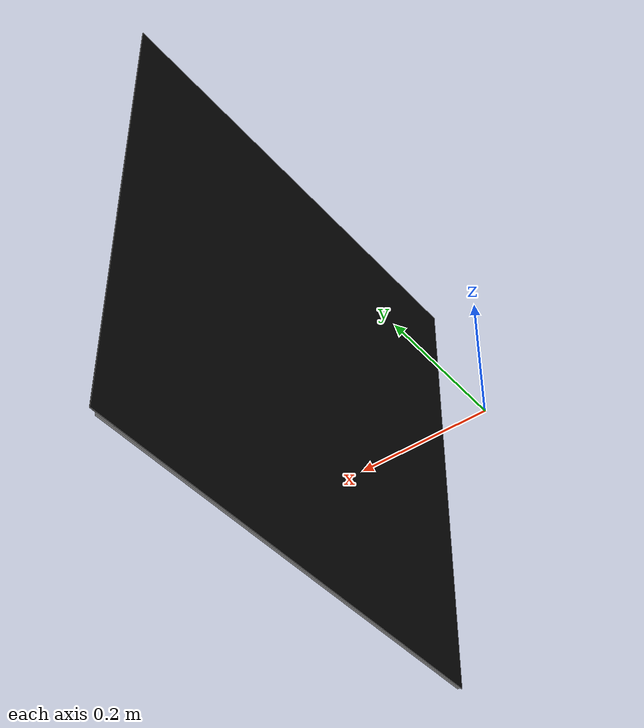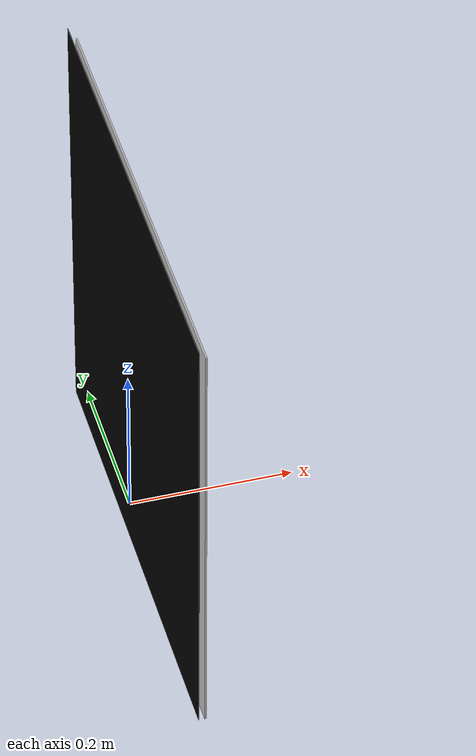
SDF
<?xml version="1.0" encoding="UTF-8"?>

<sdf version="1.10">
    <model name="TorpedoTag">
        <cast_shadows>false</cast_shadows>
        <link name="link">
            <cast_shadows>false</cast_shadows>
            <collision name="collision">
                <geometry>
                    <mesh>
                        <uri>meshes/TorpedoTag.obj</uri>
                        <scale>1 1 1</scale>
                    </mesh>
                </geometry>
            </collision>

            <visual name="visual">
                <geometry>
                    <mesh>
                        <uri>meshes/TorpedoTag.obj</uri>
                        <scale>1 1 1</scale>
                    </mesh>
                </geometry>
                <cast_shadows>false</cast_shadows>
            </visual>

            <visual name="torpedo_image_label">
                <pose>0.08 0.29 -0.07 0 0 0</pose>
                <geometry>
                    <box>
                        <size>0.001 0.62 0.62</size>
                    </box>
                </geometry>
                <cast_shadows>false</cast_shadows>

                <material>
                    <ambient>0, 0, 0, 0</ambient>
                    <diffuse>0, 0, 0, 0</diffuse>
                    <specular>0, 0, 0, 0</specular>
                </material>
                <plugin filename="gz-sim-label-system" name="gz::sim::systems::Label">
                    <label>9</label>
                </plugin>
            </visual>
        </link>
        <static>true</static>
    </model>
</sdf>
